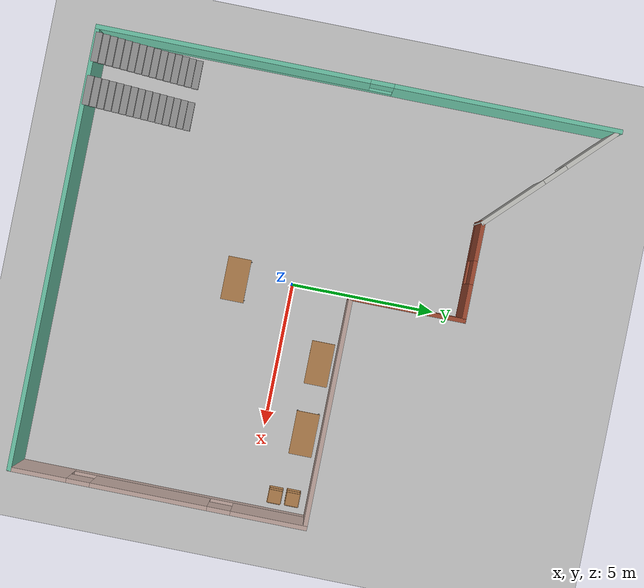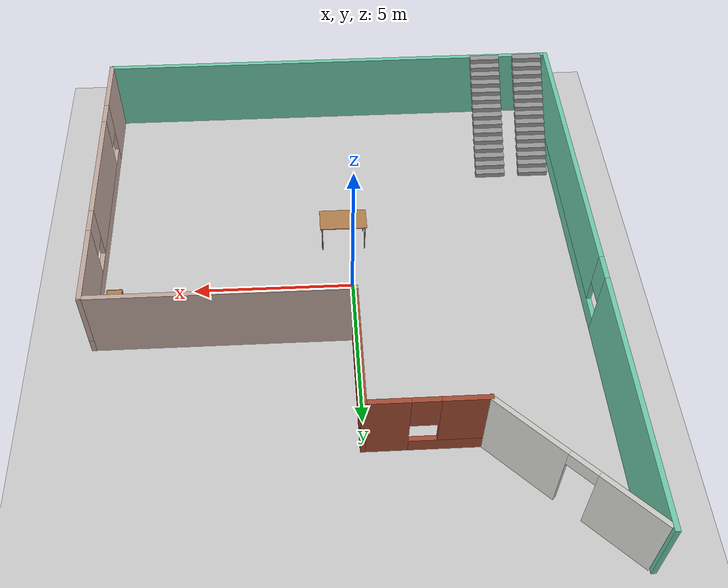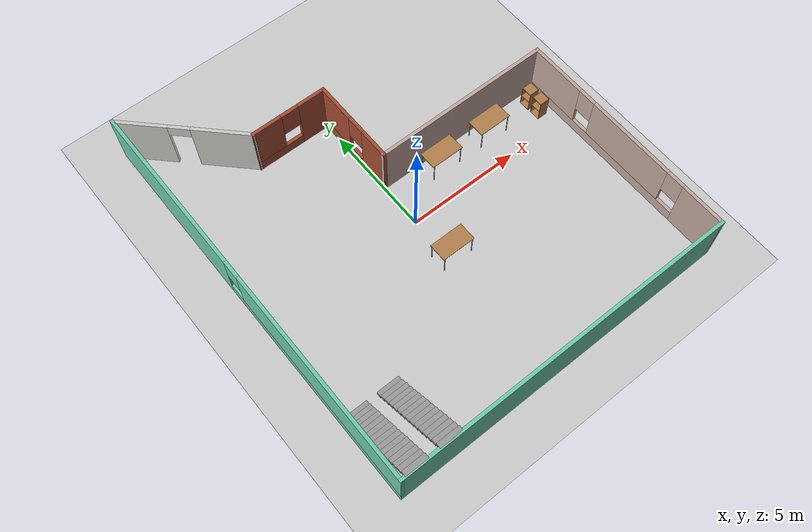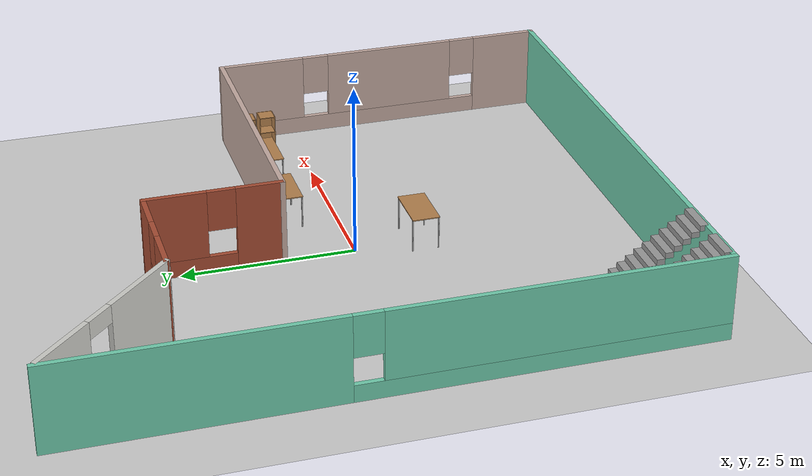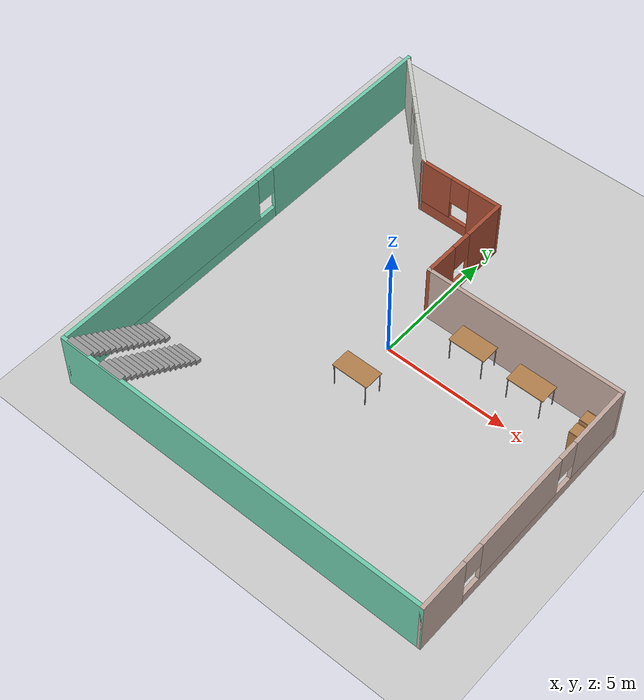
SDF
<sdf version="1.6">
 <world name="default">
  <light name="sun" type="directional">
   <pose>0 0 10 0 -0 0</pose>
   <diffuse>0.8 0.8 0.8 1</diffuse>
   <specular>0.2 0.2 0.2 1</specular>
   <attenuation>
    <range>1000</range>
    <constant>0.9</constant>
    <linear>0.01</linear>
    <quadratic>0.001</quadratic>
   </attenuation>
   <direction>-0.5 0.1 -0.9</direction>
  </light>
  <model name="ground_plane">
   <static>1</static>
   <link name="link">
    <collision name="collision">
     <geometry><plane><normal>0 0 1</normal><size>100 100</size></plane></geometry>
     <surface>
      <contact><collide_bitmask>65535</collide_bitmask></contact>
      <friction><ode><mu>100</mu><mu2>50</mu2></ode></friction>
     </surface>
    </collision>
    <visual name="visual">
     <cast_shadows>0</cast_shadows>
     <geometry><plane><normal>0 0 1</normal><size>100 100</size></plane></geometry>
     <material>
      <script><uri>file://media/materials/scripts/gazebo.material</uri><name>Gazebo/Grey</name></script>
     </material>
    </visual>
   </link>
  </model>
  <gravity>0 0 -9.8</gravity>
  <magnetic_field>6e-06 2.3e-05 -4.2e-05</magnetic_field>
  <atmosphere type="adiabatic"/>
  <physics name="default_physics" default="0" type="ode">
   <max_step_size>0.001</max_step_size>
   <real_time_factor>1</real_time_factor>
   <real_time_update_rate>1000</real_time_update_rate>
  </physics>
  <scene><ambient>0.4 0.4 0.4 1</ambient><background>0.7 0.7 0.7 1</background><shadows>1</shadows></scene>
  <spherical_coordinates>
   <surface_model>EARTH_WGS84</surface_model>
   <latitude_deg>0</latitude_deg>
   <longitude_deg>0</longitude_deg>
   <elevation>0</elevation>
   <heading_deg>0</heading_deg>
  </spherical_coordinates>
  <model name="SLAM_building_2">
   <pose>0.355071 0.863304 0 0 -0 0</pose>
   <link name="Stairs_0">
    <visual name="Stairs_0_Visual_0">
     <pose>-6.87319 -5.56197 0.083333 0 -0 0</pose>
     <geometry><box><size>1 0.233333 0.166667</size></box></geometry>
     <material>
      <script><uri>file://media/materials/scripts/gazebo.material</uri><name>Gazebo/Grey</name></script>
      <ambient>1 1 1 1</ambient>
     </material>
     <meta><layer>0</layer></meta>
    </visual>
    <collision name="Stairs_0_Collision_0">
     <geometry><box><size>1 0.233333 0.166667</size></box></geometry>
     <pose>-6.87319 -5.56197 0.083333 0 -0 0</pose>
    </collision>
    <visual name="Stairs_0_Visual_1">
     <pose>-6.87319 -5.7953 0.25 0 -0 0</pose>
     <geometry><box><size>1 0.233333 0.166667</size></box></geometry>
     <material>
      <script><uri>file://media/materials/scripts/gazebo.material</uri><name>Gazebo/Grey</name></script>
      <ambient>1 1 1 1</ambient>
     </material>
     <meta><layer>0</layer></meta>
    </visual>
    <collision name="Stairs_0_Collision_1">
     <geometry><box><size>1 0.233333 0.166667</size></box></geometry>
     <pose>-6.87319 -5.7953 0.25 0 -0 0</pose>
    </collision>
    <visual name="Stairs_0_Visual_2">
     <pose>-6.87319 -6.02864 0.416667 0 -0 0</pose>
     <geometry><box><size>1 0.233333 0.166667</size></box></geometry>
     <material>
      <script><uri>file://media/materials/scripts/gazebo.material</uri><name>Gazebo/Grey</name></script>
      <ambient>1 1 1 1</ambient>
     </material>
     <meta><layer>0</layer></meta>
    </visual>
    <collision name="Stairs_0_Collision_2">
     <geometry><box><size>1 0.233333 0.166667</size></box></geometry>
     <pose>-6.87319 -6.02864 0.416667 0 -0 0</pose>
    </collision>
    <visual name="Stairs_0_Visual_3">
     <pose>-6.87319 -6.26197 0.583333 0 -0 0</pose>
     <geometry><box><size>1 0.233333 0.166667</size></box></geometry>
     <material>
      <script><uri>file://media/materials/scripts/gazebo.material</uri><name>Gazebo/Grey</name></script>
      <ambient>1 1 1 1</ambient>
     </material>
     <meta><layer>0</layer></meta>
    </visual>
    <collision name="Stairs_0_Collision_3">
     <geometry><box><size>1 0.233333 0.166667</size></box></geometry>
     <pose>-6.87319 -6.26197 0.583333 0 -0 0</pose>
    </collision>
    <visual name="Stairs_0_Visual_4">
     <pose>-6.87319 -6.4953 0.75 0 -0 0</pose>
     <geometry><box><size>1 0.233333 0.166667</size></box></geometry>
     <material>
      <script><uri>file://media/materials/scripts/gazebo.material</uri><name>Gazebo/Grey</name></script>
      <ambient>1 1 1 1</ambient>
     </material>
     <meta><layer>0</layer></meta>
    </visual>
    <collision name="Stairs_0_Collision_4">
     <geometry><box><size>1 0.233333 0.166667</size></box></geometry>
     <pose>-6.87319 -6.4953 0.75 0 -0 0</pose>
    </collision>
    <visual name="Stairs_0_Visual_5">
     <pose>-6.87319 -6.72864 0.916667 0 -0 0</pose>
     <geometry><box><size>1 0.233333 0.166667</size></box></geometry>
     <material>
      <script><uri>file://media/materials/scripts/gazebo.material</uri><name>Gazebo/Grey</name></script>
      <ambient>1 1 1 1</ambient>
     </material>
     <meta><layer>0</layer></meta>
    </visual>
    <collision name="Stairs_0_Collision_5">
     <geometry><box><size>1 0.233333 0.166667</size></box></geometry>
     <pose>-6.87319 -6.72864 0.916667 0 -0 0</pose>
    </collision>
    <visual name="Stairs_0_Visual_6">
     <pose>-6.87319 -6.96197 1.08333 0 -0 0</pose>
     <geometry><box><size>1 0.233333 0.166667</size></box></geometry>
     <material>
      <script><uri>file://media/materials/scripts/gazebo.material</uri><name>Gazebo/Grey</name></script>
      <ambient>1 1 1 1</ambient>
     </material>
     <meta><layer>0</layer></meta>
    </visual>
    <collision name="Stairs_0_Collision_6">
     <geometry><box><size>1 0.233333 0.166667</size></box></geometry>
     <pose>-6.87319 -6.96197 1.08333 0 -0 0</pose>
    </collision>
    <visual name="Stairs_0_Visual_7">
     <pose>-6.87319 -7.1953 1.25 0 -0 0</pose>
     <geometry><box><size>1 0.233333 0.166667</size></box></geometry>
     <material>
      <script><uri>file://media/materials/scripts/gazebo.material</uri><name>Gazebo/Grey</name></script>
      <ambient>1 1 1 1</ambient>
     </material>
     <meta><layer>0</layer></meta>
    </visual>
    <collision name="Stairs_0_Collision_7">
     <geometry><box><size>1 0.233333 0.166667</size></box></geometry>
     <pose>-6.87319 -7.1953 1.25 0 -0 0</pose>
    </collision>
    <visual name="Stairs_0_Visual_8">
     <pose>-6.87319 -7.42864 1.41667 0 -0 0</pose>
     <geometry><box><size>1 0.233333 0.166667</size></box></geometry>
     <material>
      <script><uri>file://media/materials/scripts/gazebo.material</uri><name>Gazebo/Grey</name></script>
      <ambient>1 1 1 1</ambient>
     </material>
     <meta><layer>0</layer></meta>
    </visual>
    <collision name="Stairs_0_Collision_8">
     <geometry><box><size>1 0.233333 0.166667</size></box></geometry>
     <pose>-6.87319 -7.42864 1.41667 0 -0 0</pose>
    </collision>
    <visual name="Stairs_0_Visual_9">
     <pose>-6.87319 -7.66197 1.58333 0 -0 0</pose>
     <geometry><box><size>1 0.233333 0.166667</size></box></geometry>
     <material>
      <script><uri>file://media/materials/scripts/gazebo.material</uri><name>Gazebo/Grey</name></script>
      <ambient>1 1 1 1</ambient>
     </material>
     <meta><layer>0</layer></meta>
    </visual>
    <collision name="Stairs_0_Collision_9">
     <geometry><box><size>1 0.233333 0.166667</size></box></geometry>
     <pose>-6.87319 -7.66197 1.58333 0 -0 0</pose>
    </collision>
    <visual name="Stairs_0_Visual_10">
     <pose>-6.87319 -7.8953 1.75 0 -0 0</pose>
     <geometry><box><size>1 0.233333 0.166667</size></box></geometry>
     <material>
      <script><uri>file://media/materials/scripts/gazebo.material</uri><name>Gazebo/Grey</name></script>
      <ambient>1 1 1 1</ambient>
     </material>
     <meta><layer>0</layer></meta>
    </visual>
    <collision name="Stairs_0_Collision_10">
     <geometry><box><size>1 0.233333 0.166667</size></box></geometry>
     <pose>-6.87319 -7.8953 1.75 0 -0 0</pose>
    </collision>
    <visual name="Stairs_0_Visual_11">
     <pose>-6.87319 -8.12864 1.91667 0 -0 0</pose>
     <geometry><box><size>1 0.233333 0.166667</size></box></geometry>
     <material>
      <script><uri>file://media/materials/scripts/gazebo.material</uri><name>Gazebo/Grey</name></script>
      <ambient>1 1 1 1</ambient>
     </material>
     <meta><layer>0</layer></meta>
    </visual>
    <collision name="Stairs_0_Collision_11">
     <geometry><box><size>1 0.233333 0.166667</size></box></geometry>
     <pose>-6.87319 -8.12864 1.91667 0 -0 0</pose>
    </collision>
    <visual name="Stairs_0_Visual_12">
     <pose>-6.87319 -8.36197 2.08333 0 -0 0</pose>
     <geometry><box><size>1 0.233333 0.166667</size></box></geometry>
     <material>
      <script><uri>file://media/materials/scripts/gazebo.material</uri><name>Gazebo/Grey</name></script>
      <ambient>1 1 1 1</ambient>
     </material>
     <meta><layer>0</layer></meta>
    </visual>
    <collision name="Stairs_0_Collision_12">
     <geometry><box><size>1 0.233333 0.166667</size></box></geometry>
     <pose>-6.87319 -8.36197 2.08333 0 -0 0</pose>
    </collision>
    <visual name="Stairs_0_Visual_13">
     <pose>-6.87319 -8.5953 2.25 0 -0 0</pose>
     <geometry><box><size>1 0.233333 0.166667</size></box></geometry>
     <material>
      <script><uri>file://media/materials/scripts/gazebo.material</uri><name>Gazebo/Grey</name></script>
      <ambient>1 1 1 1</ambient>
     </material>
     <meta><layer>0</layer></meta>
    </visual>
    <collision name="Stairs_0_Collision_13">
     <geometry><box><size>1 0.233333 0.166667</size></box></geometry>
     <pose>-6.87319 -8.5953 2.25 0 -0 0</pose>
    </collision>
    <visual name="Stairs_0_Visual_14">
     <pose>-6.87319 -8.82864 2.41667 0 -0 0</pose>
     <geometry><box><size>1 0.233333 0.166667</size></box></geometry>
     <material>
      <script><uri>file://media/materials/scripts/gazebo.material</uri><name>Gazebo/Grey</name></script>
      <ambient>1 1 1 1</ambient>
     </material>
     <meta><layer>0</layer></meta>
    </visual>
    <collision name="Stairs_0_Collision_14">
     <geometry><box><size>1 0.233333 0.166667</size></box></geometry>
     <pose>-6.87319 -8.82864 2.41667 0 -0 0</pose>
    </collision>
   </link>
   <link name="Stairs_1">
    <visual name="Stairs_1_Visual_0">
     <pose>-5.39652 -5.56197 0.083333 0 -0 0</pose>
     <geometry><box><size>1 0.233333 0.166667</size></box></geometry>
     <material>
      <script><uri>file://media/materials/scripts/gazebo.material</uri><name>Gazebo/Grey</name></script>
      <ambient>1 1 1 1</ambient>
     </material>
     <meta><layer>0</layer></meta>
    </visual>
    <collision name="Stairs_1_Collision_0">
     <geometry><box><size>1 0.233333 0.166667</size></box></geometry>
     <pose>-5.39652 -5.56197 0.083333 0 -0 0</pose>
    </collision>
    <visual name="Stairs_1_Visual_1">
     <pose>-5.39652 -5.7953 0.25 0 -0 0</pose>
     <geometry><box><size>1 0.233333 0.166667</size></box></geometry>
     <material>
      <script><uri>file://media/materials/scripts/gazebo.material</uri><name>Gazebo/Grey</name></script>
      <ambient>1 1 1 1</ambient>
     </material>
     <meta><layer>0</layer></meta>
    </visual>
    <collision name="Stairs_1_Collision_1">
     <geometry><box><size>1 0.233333 0.166667</size></box></geometry>
     <pose>-5.39652 -5.7953 0.25 0 -0 0</pose>
    </collision>
    <visual name="Stairs_1_Visual_2">
     <pose>-5.39652 -6.02864 0.416667 0 -0 0</pose>
     <geometry><box><size>1 0.233333 0.166667</size></box></geometry>
     <material>
      <script><uri>file://media/materials/scripts/gazebo.material</uri><name>Gazebo/Grey</name></script>
      <ambient>1 1 1 1</ambient>
     </material>
     <meta><layer>0</layer></meta>
    </visual>
    <collision name="Stairs_1_Collision_2">
     <geometry><box><size>1 0.233333 0.166667</size></box></geometry>
     <pose>-5.39652 -6.02864 0.416667 0 -0 0</pose>
    </collision>
    <visual name="Stairs_1_Visual_3">
     <pose>-5.39652 -6.26197 0.583333 0 -0 0</pose>
     <geometry><box><size>1 0.233333 0.166667</size></box></geometry>
     <material>
      <script><uri>file://media/materials/scripts/gazebo.material</uri><name>Gazebo/Grey</name></script>
      <ambient>1 1 1 1</ambient>
     </material>
     <meta><layer>0</layer></meta>
    </visual>
    <collision name="Stairs_1_Collision_3">
     <geometry><box><size>1 0.233333 0.166667</size></box></geometry>
     <pose>-5.39652 -6.26197 0.583333 0 -0 0</pose>
    </collision>
    <visual name="Stairs_1_Visual_4">
     <pose>-5.39652 -6.4953 0.75 0 -0 0</pose>
     <geometry><box><size>1 0.233333 0.166667</size></box></geometry>
     <material>
      <script><uri>file://media/materials/scripts/gazebo.material</uri><name>Gazebo/Grey</name></script>
      <ambient>1 1 1 1</ambient>
     </material>
     <meta><layer>0</layer></meta>
    </visual>
    <collision name="Stairs_1_Collision_4">
     <geometry><box><size>1 0.233333 0.166667</size></box></geometry>
     <pose>-5.39652 -6.4953 0.75 0 -0 0</pose>
    </collision>
    <visual name="Stairs_1_Visual_5">
     <pose>-5.39652 -6.72864 0.916667 0 -0 0</pose>
     <geometry><box><size>1 0.233333 0.166667</size></box></geometry>
     <material>
      <script><uri>file://media/materials/scripts/gazebo.material</uri><name>Gazebo/Grey</name></script>
      <ambient>1 1 1 1</ambient>
     </material>
     <meta><layer>0</layer></meta>
    </visual>
    <collision name="Stairs_1_Collision_5">
     <geometry><box><size>1 0.233333 0.166667</size></box></geometry>
     <pose>-5.39652 -6.72864 0.916667 0 -0 0</pose>
    </collision>
    <visual name="Stairs_1_Visual_6">
     <pose>-5.39652 -6.96197 1.08333 0 -0 0</pose>
     <geometry><box><size>1 0.233333 0.166667</size></box></geometry>
     <material>
      <script><uri>file://media/materials/scripts/gazebo.material</uri><name>Gazebo/Grey</name></script>
      <ambient>1 1 1 1</ambient>
     </material>
     <meta><layer>0</layer></meta>
    </visual>
    <collision name="Stairs_1_Collision_6">
     <geometry><box><size>1 0.233333 0.166667</size></box></geometry>
     <pose>-5.39652 -6.96197 1.08333 0 -0 0</pose>
    </collision>
    <visual name="Stairs_1_Visual_7">
     <pose>-5.39652 -7.1953 1.25 0 -0 0</pose>
     <geometry><box><size>1 0.233333 0.166667</size></box></geometry>
     <material>
      <script><uri>file://media/materials/scripts/gazebo.material</uri><name>Gazebo/Grey</name></script>
      <ambient>1 1 1 1</ambient>
     </material>
     <meta><layer>0</layer></meta>
    </visual>
    <collision name="Stairs_1_Collision_7">
     <geometry><box><size>1 0.233333 0.166667</size></box></geometry>
     <pose>-5.39652 -7.1953 1.25 0 -0 0</pose>
    </collision>
    <visual name="Stairs_1_Visual_8">
     <pose>-5.39652 -7.42864 1.41667 0 -0 0</pose>
     <geometry><box><size>1 0.233333 0.166667</size></box></geometry>
     <material>
      <script><uri>file://media/materials/scripts/gazebo.material</uri><name>Gazebo/Grey</name></script>
      <ambient>1 1 1 1</ambient>
     </material>
     <meta><layer>0</layer></meta>
    </visual>
    <collision name="Stairs_1_Collision_8">
     <geometry><box><size>1 0.233333 0.166667</size></box></geometry>
     <pose>-5.39652 -7.42864 1.41667 0 -0 0</pose>
    </collision>
    <visual name="Stairs_1_Visual_9">
     <pose>-5.39652 -7.66197 1.58333 0 -0 0</pose>
     <geometry><box><size>1 0.233333 0.166667</size></box></geometry>
     <material>
      <script><uri>file://media/materials/scripts/gazebo.material</uri><name>Gazebo/Grey</name></script>
      <ambient>1 1 1 1</ambient>
     </material>
     <meta><layer>0</layer></meta>
    </visual>
    <collision name="Stairs_1_Collision_9">
     <geometry><box><size>1 0.233333 0.166667</size></box></geometry>
     <pose>-5.39652 -7.66197 1.58333 0 -0 0</pose>
    </collision>
    <visual name="Stairs_1_Visual_10">
     <pose>-5.39652 -7.8953 1.75 0 -0 0</pose>
     <geometry><box><size>1 0.233333 0.166667</size></box></geometry>
     <material>
      <script><uri>file://media/materials/scripts/gazebo.material</uri><name>Gazebo/Grey</name></script>
      <ambient>1 1 1 1</ambient>
     </material>
     <meta><layer>0</layer></meta>
    </visual>
    <collision name="Stairs_1_Collision_10">
     <geometry><box><size>1 0.233333 0.166667</size></box></geometry>
     <pose>-5.39652 -7.8953 1.75 0 -0 0</pose>
    </collision>
    <visual name="Stairs_1_Visual_11">
     <pose>-5.39652 -8.12864 1.91667 0 -0 0</pose>
     <geometry><box><size>1 0.233333 0.166667</size></box></geometry>
     <material>
      <script><uri>file://media/materials/scripts/gazebo.material</uri><name>Gazebo/Grey</name></script>
      <ambient>1 1 1 1</ambient>
     </material>
     <meta><layer>0</layer></meta>
    </visual>
    <collision name="Stairs_1_Collision_11">
     <geometry><box><size>1 0.233333 0.166667</size></box></geometry>
     <pose>-5.39652 -8.12864 1.91667 0 -0 0</pose>
    </collision>
    <visual name="Stairs_1_Visual_12">
     <pose>-5.39652 -8.36197 2.08333 0 -0 0</pose>
     <geometry><box><size>1 0.233333 0.166667</size></box></geometry>
     <material>
      <script><uri>file://media/materials/scripts/gazebo.material</uri><name>Gazebo/Grey</name></script>
      <ambient>1 1 1 1</ambient>
     </material>
     <meta><layer>0</layer></meta>
    </visual>
    <collision name="Stairs_1_Collision_12">
     <geometry><box><size>1 0.233333 0.166667</size></box></geometry>
     <pose>-5.39652 -8.36197 2.08333 0 -0 0</pose>
    </collision>
    <visual name="Stairs_1_Visual_13">
     <pose>-5.39652 -8.5953 2.25 0 -0 0</pose>
     <geometry><box><size>1 0.233333 0.166667</size></box></geometry>
     <material>
      <script><uri>file://media/materials/scripts/gazebo.material</uri><name>Gazebo/Grey</name></script>
      <ambient>1 1 1 1</ambient>
     </material>
     <meta><layer>0</layer></meta>
    </visual>
    <collision name="Stairs_1_Collision_13">
     <geometry><box><size>1 0.233333 0.166667</size></box></geometry>
     <pose>-5.39652 -8.5953 2.25 0 -0 0</pose>
    </collision>
    <visual name="Stairs_1_Visual_14">
     <pose>-5.39652 -8.82864 2.41667 0 -0 0</pose>
     <geometry><box><size>1 0.233333 0.166667</size></box></geometry>
     <material>
      <script><uri>file://media/materials/scripts/gazebo.material</uri><name>Gazebo/Grey</name></script>
      <ambient>1 1 1 1</ambient>
     </material>
     <meta><layer>0</layer></meta>
    </visual>
    <collision name="Stairs_1_Collision_14">
     <geometry><box><size>1 0.233333 0.166667</size></box></geometry>
     <pose>-5.39652 -8.82864 2.41667 0 -0 0</pose>
    </collision>
   </link>
   <link name="Wall_15">
    <pose>-7.55 0 0 0 0 -1.5708</pose>
    <visual name="Wall_15_Visual_0">
     <pose>-5.10166 0 1.25 0 -0 0</pose>
     <geometry><box><size>7.79668 0.15 2.5</size></box></geometry>
     <material>
      <script><uri>file://media/materials/scripts/gazebo.material</uri><name>Gazebo/Grey</name></script>
      <ambient>0.435294 0.796078 0.67451 1</ambient>
     </material>
     <meta><layer>0</layer></meta>
    </visual>
    <collision name="Wall_15_Collision_0">
     <geometry><box><size>7.79668 0.15 2.5</size></box></geometry>
     <pose>-5.10166 0 1.25 0 -0 0</pose>
    </collision>
    <visual name="Wall_15_Visual_1">
     <pose>3.89834 0 0.25 0 -0 0</pose>
     <geometry><box><size>10.2033 0.15 0.5</size></box></geometry>
     <material>
      <script><uri>file://media/materials/scripts/gazebo.material</uri><name>Gazebo/Grey</name></script>
      <ambient>0.435294 0.796078 0.67451 1</ambient>
     </material>
     <meta><layer>0</layer></meta>
    </visual>
    <collision name="Wall_15_Collision_1">
     <geometry><box><size>10.2033 0.15 0.5</size></box></geometry>
     <pose>3.89834 0 0.25 0 -0 0</pose>
    </collision>
    <visual name="Wall_15_Visual_2">
     <pose>4.29834 0 1.5 0 -0 0</pose>
     <geometry><box><size>9.40332 0.15 2</size></box></geometry>
     <material>
      <script><uri>file://media/materials/scripts/gazebo.material</uri><name>Gazebo/Grey</name></script>
      <ambient>0.435294 0.796078 0.67451 1</ambient>
     </material>
     <meta><layer>0</layer></meta>
    </visual>
    <collision name="Wall_15_Collision_2">
     <geometry><box><size>9.40332 0.15 2</size></box></geometry>
     <pose>4.29834 0 1.5 0 -0 0</pose>
    </collision>
    <visual name="Wall_15_Visual_3">
     <pose>-0.80332 0 1.9 0 -0 0</pose>
     <geometry><box><size>0.8 0.15 1.2</size></box></geometry>
     <material>
      <script><uri>file://media/materials/scripts/gazebo.material</uri><name>Gazebo/Grey</name></script>
      <ambient>0.435294 0.796078 0.67451 1</ambient>
     </material>
     <meta><layer>0</layer></meta>
    </visual>
    <collision name="Wall_15_Collision_3">
     <geometry><box><size>0.8 0.15 1.2</size></box></geometry>
     <pose>-0.80332 0 1.9 0 -0 0</pose>
    </collision>
   </link>
   <link name="Wall_16">
    <collision name="Wall_16_Collision">
     <geometry><box><size>15.25 0.15 2.5</size></box></geometry>
     <pose>0 0 1.25 0 -0 0</pose>
    </collision>
    <visual name="Wall_16_Visual">
     <pose>0 0 1.25 0 -0 0</pose>
     <geometry><box><size>15.25 0.15 2.5</size></box></geometry>
     <material>
      <script><uri>file://media/materials/scripts/gazebo.material</uri><name>Gazebo/Grey</name></script>
      <ambient>0.435294 0.796078 0.67451 1</ambient>
     </material>
     <meta><layer>0</layer></meta>
    </visual>
    <pose>0 -8.925 0 0 -0 0</pose>
   </link>
   <link name="Wall_17">
    <pose>7.55 -3.875 0 0 -0 1.5708</pose>
    <visual name="Wall_17_Visual_0">
     <pose>-4.11501 0 1.25 0 -0 0</pose>
     <geometry><box><size>2.01998 0.15 2.5</size></box></geometry>
     <material>
      <script><uri>file://media/materials/scripts/gazebo.material</uri><name>Gazebo/Grey</name></script>
      <ambient>0.760784 0.662745 0.627451 1</ambient>
     </material>
     <meta><layer>0</layer></meta>
    </visual>
    <collision name="Wall_17_Collision_0">
     <geometry><box><size>2.01998 0.15 2.5</size></box></geometry>
     <pose>-4.11501 0 1.25 0 -0 0</pose>
    </collision>
    <visual name="Wall_17_Visual_1">
     <pose>1.00999 0 0.25 0 -0 0</pose>
     <geometry><box><size>8.23002 0.15 0.5</size></box></geometry>
     <material>
      <script><uri>file://media/materials/scripts/gazebo.material</uri><name>Gazebo/Grey</name></script>
      <ambient>0.760784 0.662745 0.627451 1</ambient>
     </material>
     <meta><layer>0</layer></meta>
    </visual>
    <collision name="Wall_17_Collision_1">
     <geometry><box><size>8.23002 0.15 0.5</size></box></geometry>
     <pose>1.00999 0 0.25 0 -0 0</pose>
    </collision>
    <visual name="Wall_17_Visual_2">
     <pose>-0.305438 0 1.5 0 -0 0</pose>
     <geometry><box><size>3.99917 0.15 2</size></box></geometry>
     <material>
      <script><uri>file://media/materials/scripts/gazebo.material</uri><name>Gazebo/Grey</name></script>
      <ambient>0.760784 0.662745 0.627451 1</ambient>
     </material>
     <meta><layer>0</layer></meta>
    </visual>
    <collision name="Wall_17_Collision_2">
     <geometry><box><size>3.99917 0.15 2</size></box></geometry>
     <pose>-0.305438 0 1.5 0 -0 0</pose>
    </collision>
    <visual name="Wall_17_Visual_3">
     <pose>3.80958 0 1.5 0 -0 0</pose>
     <geometry><box><size>2.63085 0.15 2</size></box></geometry>
     <material>
      <script><uri>file://media/materials/scripts/gazebo.material</uri><name>Gazebo/Grey</name></script>
      <ambient>0.760784 0.662745 0.627451 1</ambient>
     </material>
     <meta><layer>0</layer></meta>
    </visual>
    <collision name="Wall_17_Collision_3">
     <geometry><box><size>2.63085 0.15 2</size></box></geometry>
     <pose>3.80958 0 1.5 0 -0 0</pose>
    </collision>
    <visual name="Wall_17_Visual_4">
     <pose>-2.70503 0 1.9 0 -0 0</pose>
     <geometry><box><size>0.8 0.15 1.2</size></box></geometry>
     <material>
      <script><uri>file://media/materials/scripts/gazebo.material</uri><name>Gazebo/Grey</name></script>
      <ambient>0.760784 0.662745 0.627451 1</ambient>
     </material>
     <meta><layer>0</layer></meta>
    </visual>
    <collision name="Wall_17_Collision_4">
     <geometry><box><size>0.8 0.15 1.2</size></box></geometry>
     <pose>-2.70503 0 1.9 0 -0 0</pose>
    </collision>
    <visual name="Wall_17_Visual_5">
     <pose>2.09415 0 1.9 0 -0 0</pose>
     <geometry><box><size>0.8 0.15 1.2</size></box></geometry>
     <material>
      <script><uri>file://media/materials/scripts/gazebo.material</uri><name>Gazebo/Grey</name></script>
      <ambient>0.760784 0.662745 0.627451 1</ambient>
     </material>
     <meta><layer>0</layer></meta>
    </visual>
    <collision name="Wall_17_Collision_5">
     <geometry><box><size>0.8 0.15 1.2</size></box></geometry>
     <pose>2.09415 0 1.9 0 -0 0</pose>
    </collision>
   </link>
   <link name="Wall_18">
    <collision name="Wall_18_Collision">
     <geometry><box><size>8 0.15 2.5</size></box></geometry>
     <pose>0 0 1.25 0 -0 0</pose>
    </collision>
    <visual name="Wall_18_Visual">
     <pose>0 0 1.25 0 -0 0</pose>
     <geometry><box><size>8 0.15 2.5</size></box></geometry>
     <material>
      <script><uri>file://media/materials/scripts/gazebo.material</uri><name>Gazebo/Grey</name></script>
      <ambient>0.760784 0.662745 0.627451 1</ambient>
     </material>
     <meta><layer>0</layer></meta>
    </visual>
    <pose>3.625 1.175 0 0 -0 3.14159</pose>
   </link>
   <link name="Wall_19">
    <pose>-0.3 3.1 0 0 -0 1.5708</pose>
    <visual name="Wall_19_Visual_0">
     <pose>-1.30237 0 1.25 0 -0 0</pose>
     <geometry><box><size>1.39527 0.15 2.5</size></box></geometry>
     <material>
      <script><uri>file://media/materials/scripts/gazebo.material</uri><name>Gazebo/Bricks</name></script>
      <ambient>1 1 1 1</ambient>
     </material>
     <meta><layer>0</layer></meta>
    </visual>
    <collision name="Wall_19_Collision_0">
     <geometry><box><size>1.39527 0.15 2.5</size></box></geometry>
     <pose>-1.30237 0 1.25 0 -0 0</pose>
    </collision>
    <visual name="Wall_19_Visual_1">
     <pose>0.697634 0 0.25 0 -0 0</pose>
     <geometry><box><size>2.60473 0.15 0.5</size></box></geometry>
     <material>
      <script><uri>file://media/materials/scripts/gazebo.material</uri><name>Gazebo/Bricks</name></script>
      <ambient>1 1 1 1</ambient>
     </material>
     <meta><layer>0</layer></meta>
    </visual>
    <collision name="Wall_19_Collision_1">
     <geometry><box><size>2.60473 0.15 0.5</size></box></geometry>
     <pose>0.697634 0 0.25 0 -0 0</pose>
    </collision>
    <visual name="Wall_19_Visual_2">
     <pose>1.09763 0 1.5 0 -0 0</pose>
     <geometry><box><size>1.80473 0.15 2</size></box></geometry>
     <material>
      <script><uri>file://media/materials/scripts/gazebo.material</uri><name>Gazebo/Bricks</name></script>
      <ambient>1 1 1 1</ambient>
     </material>
     <meta><layer>0</layer></meta>
    </visual>
    <collision name="Wall_19_Collision_2">
     <geometry><box><size>1.80473 0.15 2</size></box></geometry>
     <pose>1.09763 0 1.5 0 -0 0</pose>
    </collision>
    <visual name="Wall_19_Visual_3">
     <pose>-0.204732 0 1.9 0 -0 0</pose>
     <geometry><box><size>0.8 0.15 1.2</size></box></geometry>
     <material>
      <script><uri>file://media/materials/scripts/gazebo.material</uri><name>Gazebo/Bricks</name></script>
      <ambient>1 1 1 1</ambient>
     </material>
     <meta><layer>0</layer></meta>
    </visual>
    <collision name="Wall_19_Collision_3">
     <geometry><box><size>0.8 0.15 1.2</size></box></geometry>
     <pose>-0.204732 0 1.9 0 -0 0</pose>
    </collision>
   </link>
   <link name="Wall_20">
    <pose>-1.975 5.025 0 0 -0 3.14159</pose>
    <visual name="Wall_20_Visual_0">
     <pose>-1.08702 0 1.25 0 -0 0</pose>
     <geometry><box><size>1.32596 0.15 2.5</size></box></geometry>
     <material>
      <script><uri>file://media/materials/scripts/gazebo.material</uri><name>Gazebo/Bricks</name></script>
      <ambient>1 1 1 1</ambient>
     </material>
     <meta><layer>0</layer></meta>
    </visual>
    <collision name="Wall_20_Collision_0">
     <geometry><box><size>1.32596 0.15 2.5</size></box></geometry>
     <pose>-1.08702 0 1.25 0 -0 0</pose>
    </collision>
    <visual name="Wall_20_Visual_1">
     <pose>0.662982 0 0.25 0 -0 0</pose>
     <geometry><box><size>2.17404 0.15 0.5</size></box></geometry>
     <material>
      <script><uri>file://media/materials/scripts/gazebo.material</uri><name>Gazebo/Bricks</name></script>
      <ambient>1 1 1 1</ambient>
     </material>
     <meta><layer>0</layer></meta>
    </visual>
    <collision name="Wall_20_Collision_1">
     <geometry><box><size>2.17404 0.15 0.5</size></box></geometry>
     <pose>0.662982 0 0.25 0 -0 0</pose>
    </collision>
    <visual name="Wall_20_Visual_2">
     <pose>1.06298 0 1.5 0 -0 0</pose>
     <geometry><box><size>1.37404 0.15 2</size></box></geometry>
     <material>
      <script><uri>file://media/materials/scripts/gazebo.material</uri><name>Gazebo/Bricks</name></script>
      <ambient>1 1 1 1</ambient>
     </material>
     <meta><layer>0</layer></meta>
    </visual>
    <collision name="Wall_20_Collision_2">
     <geometry><box><size>1.37404 0.15 2</size></box></geometry>
     <pose>1.06298 0 1.5 0 -0 0</pose>
    </collision>
    <visual name="Wall_20_Visual_3">
     <pose>-0.024037 0 1.9 0 -0 0</pose>
     <geometry><box><size>0.8 0.15 1.2</size></box></geometry>
     <material>
      <script><uri>file://media/materials/scripts/gazebo.material</uri><name>Gazebo/Bricks</name></script>
      <ambient>1 1 1 1</ambient>
     </material>
     <meta><layer>0</layer></meta>
    </visual>
    <collision name="Wall_20_Collision_3">
     <geometry><box><size>0.8 0.15 1.2</size></box></geometry>
     <pose>-0.024037 0 1.9 0 -0 0</pose>
    </collision>
   </link>
   <link name="Wall_21">
    <pose>-5.54151 6.91651 0 0 -0 2.35619</pose>
    <visual name="Wall_21_Visual_0">
     <pose>-1.48499 0 1.25 0 -0 0</pose>
     <geometry><box><size>2.53003 0.15 2.5</size></box></geometry>
     <material>
      <script><uri>file://media/materials/scripts/gazebo.material</uri><name>Gazebo/CeilingTiled</name></script>
      <ambient>1 1 1 1</ambient>
     </material>
     <meta><layer>0</layer></meta>
    </visual>
    <collision name="Wall_21_Collision_0">
     <geometry><box><size>2.53003 0.15 2.5</size></box></geometry>
     <pose>-1.48499 0 1.25 0 -0 0</pose>
    </collision>
    <visual name="Wall_21_Visual_1">
     <pose>1.71501 0 1.25 0 -0 0</pose>
     <geometry><box><size>2.06997 0.15 2.5</size></box></geometry>
     <material>
      <script><uri>file://media/materials/scripts/gazebo.material</uri><name>Gazebo/CeilingTiled</name></script>
      <ambient>1 1 1 1</ambient>
     </material>
     <meta><layer>0</layer></meta>
    </visual>
    <collision name="Wall_21_Collision_1">
     <geometry><box><size>2.06997 0.15 2.5</size></box></geometry>
     <pose>1.71501 0 1.25 0 -0 0</pose>
    </collision>
    <visual name="Wall_21_Visual_2">
     <pose>0.230026 0 2.25 0 -0 0</pose>
     <geometry><box><size>0.9 0.15 0.5</size></box></geometry>
     <material>
      <script><uri>file://media/materials/scripts/gazebo.material</uri><name>Gazebo/CeilingTiled</name></script>
      <ambient>1 1 1 1</ambient>
     </material>
     <meta><layer>0</layer></meta>
    </visual>
    <collision name="Wall_21_Collision_2">
     <geometry><box><size>0.9 0.15 0.5</size></box></geometry>
     <pose>0.230026 0 2.25 0 -0 0</pose>
    </collision>
   </link>
   <static>1</static>
  </model>
  <model name="cabinet">
   <static>1</static>
   <link name="cabinet_bottom_plate">
    <inertial>
     <pose>0 0 -1 0 -0 0</pose>
     <inertia><ixx>2.05</ixx><ixy>0</ixy><ixz>0</ixz><iyy>2.05</iyy><iyz>0</iyz><izz>2.05</izz></inertia>
     <mass>25</mass>
    </inertial>
    <collision name="cabinet_bottom_plate_geom">
     <pose>0 0 0.01 0 -0 0</pose>
     <geometry><box><size>0.45 0.45 0.02</size></box></geometry>
    </collision>
    <visual name="cabinet_bottom_plate_geom_visual">
     <pose>0 0 0.01 0 -0 0</pose>
     <geometry><box><size>0.45 0.45 0.02</size></box></geometry>
     <material>
      <script><uri>file://media/materials/scripts/gazebo.material</uri><name>Gazebo/Wood</name></script>
     </material>
    </visual>
    <collision name="cabinet_bottom_plate_geom_cabinet_back_plate">
     <pose>0.235 0 0.51 0 -0 0</pose>
     <geometry><box><size>0.02 0.45 1.02</size></box></geometry>
    </collision>
    <visual name="cabinet_bottom_plate_geom_cabinet_back_plate_visual">
     <pose>0.235 0 0.51 0 -0 0</pose>
     <geometry><box><size>0.02 0.45 1.02</size></box></geometry>
     <material>
      <script><uri>file://media/materials/scripts/gazebo.material</uri><name>Gazebo/Wood</name></script>
     </material>
    </visual>
    <collision name="cabinet_bottom_plate_geom_cabinet_left_plate">
     <pose>0 0.235 0.51 0 -0 0</pose>
     <geometry><box><size>0.45 0.02 1.02</size></box></geometry>
    </collision>
    <visual name="cabinet_bottom_plate_geom_cabinet_left_plate_visual">
     <pose>0 0.235 0.51 0 -0 0</pose>
     <geometry><box><size>0.45 0.02 1.02</size></box></geometry>
     <material>
      <script><uri>file://media/materials/scripts/gazebo.material</uri><name>Gazebo/Wood</name></script>
     </material>
    </visual>
    <collision name="cabinet_bottom_plate_geom_cabinet_middle_plate">
     <pose>0 0 0.51 0 -0 0</pose>
     <geometry><box><size>0.45 0.45 0.02</size></box></geometry>
    </collision>
    <visual name="cabinet_bottom_plate_geom_cabinet_middle_plate_visual">
     <pose>0 0 0.51 0 -0 0</pose>
     <geometry><box><size>0.45 0.45 0.02</size></box></geometry>
     <material>
      <script><uri>file://media/materials/scripts/gazebo.material</uri><name>Gazebo/Wood</name></script>
     </material>
    </visual>
    <collision name="cabinet_bottom_plate_geom_cabinet_right_plate">
     <pose>0 -0.235 0.51 0 -0 0</pose>
     <geometry><box><size>0.45 0.02 1.02</size></box></geometry>
    </collision>
    <visual name="cabinet_bottom_plate_geom_cabinet_right_plate_visual">
     <pose>0 -0.235 0.51 0 -0 0</pose>
     <geometry><box><size>0.45 0.02 1.02</size></box></geometry>
     <material>
      <script><uri>file://media/materials/scripts/gazebo.material</uri><name>Gazebo/Wood</name></script>
     </material>
    </visual>
    <collision name="cabinet_bottom_plate_geom_cabinet_top_plate">
     <pose>0 0 1.01 0 -0 0</pose>
     <geometry><box><size>0.45 0.45 0.02</size></box></geometry>
    </collision>
    <visual name="cabinet_bottom_plate_geom_cabinet_top_plate_visual">
     <pose>0 0 1.01 0 -0 0</pose>
     <geometry><box><size>0.45 0.45 0.02</size></box></geometry>
     <material>
      <script><uri>file://media/materials/scripts/gazebo.material</uri><name>Gazebo/Wood</name></script>
     </material>
    </visual>
   </link>
   <pose>7.24519 1.45986 0 0 -0 0</pose>
  </model>
  <model name="cabinet_0">
   <static>1</static>
   <link name="cabinet_bottom_plate">
    <inertial>
     <pose>0 0 -1 0 -0 0</pose>
     <inertia><ixx>2.05</ixx><ixy>0</ixy><ixz>0</ixz><iyy>2.05</iyy><iyz>0</iyz><izz>2.05</izz></inertia>
     <mass>25</mass>
    </inertial>
    <collision name="cabinet_bottom_plate_geom">
     <pose>0 0 0.01 0 -0 0</pose>
     <geometry><box><size>0.45 0.45 0.02</size></box></geometry>
    </collision>
    <visual name="cabinet_bottom_plate_geom_visual">
     <pose>0 0 0.01 0 -0 0</pose>
     <geometry><box><size>0.45 0.45 0.02</size></box></geometry>
     <material>
      <script><uri>file://media/materials/scripts/gazebo.material</uri><name>Gazebo/Wood</name></script>
     </material>
    </visual>
    <collision name="cabinet_bottom_plate_geom_cabinet_back_plate">
     <pose>0.235 0 0.51 0 -0 0</pose>
     <geometry><box><size>0.02 0.45 1.02</size></box></geometry>
    </collision>
    <visual name="cabinet_bottom_plate_geom_cabinet_back_plate_visual">
     <pose>0.235 0 0.51 0 -0 0</pose>
     <geometry><box><size>0.02 0.45 1.02</size></box></geometry>
     <material>
      <script><uri>file://media/materials/scripts/gazebo.material</uri><name>Gazebo/Wood</name></script>
     </material>
    </visual>
    <collision name="cabinet_bottom_plate_geom_cabinet_left_plate">
     <pose>0 0.235 0.51 0 -0 0</pose>
     <geometry><box><size>0.45 0.02 1.02</size></box></geometry>
    </collision>
    <visual name="cabinet_bottom_plate_geom_cabinet_left_plate_visual">
     <pose>0 0.235 0.51 0 -0 0</pose>
     <geometry><box><size>0.45 0.02 1.02</size></box></geometry>
     <material>
      <script><uri>file://media/materials/scripts/gazebo.material</uri><name>Gazebo/Wood</name></script>
     </material>
    </visual>
    <collision name="cabinet_bottom_plate_geom_cabinet_middle_plate">
     <pose>0 0 0.51 0 -0 0</pose>
     <geometry><box><size>0.45 0.45 0.02</size></box></geometry>
    </collision>
    <visual name="cabinet_bottom_plate_geom_cabinet_middle_plate_visual">
     <pose>0 0 0.51 0 -0 0</pose>
     <geometry><box><size>0.45 0.45 0.02</size></box></geometry>
     <material>
      <script><uri>file://media/materials/scripts/gazebo.material</uri><name>Gazebo/Wood</name></script>
     </material>
    </visual>
    <collision name="cabinet_bottom_plate_geom_cabinet_right_plate">
     <pose>0 -0.235 0.51 0 -0 0</pose>
     <geometry><box><size>0.45 0.02 1.02</size></box></geometry>
    </collision>
    <visual name="cabinet_bottom_plate_geom_cabinet_right_plate_visual">
     <pose>0 -0.235 0.51 0 -0 0</pose>
     <geometry><box><size>0.45 0.02 1.02</size></box></geometry>
     <material>
      <script><uri>file://media/materials/scripts/gazebo.material</uri><name>Gazebo/Wood</name></script>
     </material>
    </visual>
    <collision name="cabinet_bottom_plate_geom_cabinet_top_plate">
     <pose>0 0 1.01 0 -0 0</pose>
     <geometry><box><size>0.45 0.45 0.02</size></box></geometry>
    </collision>
    <visual name="cabinet_bottom_plate_geom_cabinet_top_plate_visual">
     <pose>0 0 1.01 0 -0 0</pose>
     <geometry><box><size>0.45 0.45 0.02</size></box></geometry>
     <material>
      <script><uri>file://media/materials/scripts/gazebo.material</uri><name>Gazebo/Wood</name></script>
     </material>
    </visual>
   </link>
   <pose>7.26692 0.849565 0 0 -0 0</pose>
  </model>
  <model name="table">
   <static>1</static>
   <link name="link">
    <collision name="surface">
     <pose>0 0 1 0 -0 0</pose>
     <geometry><box><size>1.5 0.8 0.03</size></box></geometry>
     <surface><friction><ode><mu>0.6</mu><mu2>0.6</mu2></ode></friction></surface>
    </collision>
    <visual name="visual1">
     <pose>0 0 1 0 -0 0</pose>
     <geometry><box><size>1.5 0.8 0.03</size></box></geometry>
     <material>
      <script><uri>file://media/materials/scripts/gazebo.material</uri><name>Gazebo/Wood</name></script>
     </material>
    </visual>
    <collision name="front_left_leg">
     <pose>0.68 0.38 0.5 0 -0 0</pose>
     <geometry><cylinder><radius>0.02</radius><length>1</length></cylinder></geometry>
    </collision>
    <visual name="front_left_leg">
     <pose>0.68 0.38 0.5 0 -0 0</pose>
     <geometry><cylinder><radius>0.02</radius><length>1</length></cylinder></geometry>
     <material>
      <script><uri>file://media/materials/scripts/gazebo.material</uri><name>Gazebo/Grey</name></script>
     </material>
    </visual>
    <collision name="front_right_leg">
     <pose>0.68 -0.38 0.5 0 -0 0</pose>
     <geometry><cylinder><radius>0.02</radius><length>1</length></cylinder></geometry>
    </collision>
    <visual name="front_right_leg">
     <pose>0.68 -0.38 0.5 0 -0 0</pose>
     <geometry><cylinder><radius>0.02</radius><length>1</length></cylinder></geometry>
     <material>
      <script><uri>file://media/materials/scripts/gazebo.material</uri><name>Gazebo/Grey</name></script>
     </material>
    </visual>
    <collision name="back_right_leg">
     <pose>-0.68 -0.38 0.5 0 -0 0</pose>
     <geometry><cylinder><radius>0.02</radius><length>1</length></cylinder></geometry>
    </collision>
    <visual name="back_right_leg">
     <pose>-0.68 -0.38 0.5 0 -0 0</pose>
     <geometry><cylinder><radius>0.02</radius><length>1</length></cylinder></geometry>
     <material>
      <script><uri>file://media/materials/scripts/gazebo.material</uri><name>Gazebo/Grey</name></script>
     </material>
    </visual>
    <collision name="back_left_leg">
     <pose>-0.68 0.38 0.5 0 -0 0</pose>
     <geometry><cylinder><radius>0.02</radius><length>1</length></cylinder></geometry>
    </collision>
    <visual name="back_left_leg">
     <pose>-0.68 0.38 0.5 0 -0 0</pose>
     <geometry><cylinder><radius>0.02</radius><length>1</length></cylinder></geometry>
     <material>
      <script><uri>file://media/materials/scripts/gazebo.material</uri><name>Gazebo/Grey</name></script>
     </material>
    </visual>
   </link>
   <pose>0.208117 -1.92834 0 0 -0 0</pose>
  </model>
  <model name="table_0">
   <static>1</static>
   <link name="link">
    <collision name="surface">
     <pose>0 0 1 0 -0 0</pose>
     <geometry><box><size>1.5 0.8 0.03</size></box></geometry>
     <surface><friction><ode><mu>0.6</mu><mu2>0.6</mu2></ode></friction></surface>
    </collision>
    <visual name="visual1">
     <pose>0 0 1 0 -0 0</pose>
     <geometry><box><size>1.5 0.8 0.03</size></box></geometry>
     <material>
      <script><uri>file://media/materials/scripts/gazebo.material</uri><name>Gazebo/Wood</name></script>
     </material>
    </visual>
    <collision name="front_left_leg">
     <pose>0.68 0.38 0.5 0 -0 0</pose>
     <geometry><cylinder><radius>0.02</radius><length>1</length></cylinder></geometry>
    </collision>
    <visual name="front_left_leg">
     <pose>0.68 0.38 0.5 0 -0 0</pose>
     <geometry><cylinder><radius>0.02</radius><length>1</length></cylinder></geometry>
     <material>
      <script><uri>file://media/materials/scripts/gazebo.material</uri><name>Gazebo/Grey</name></script>
     </material>
    </visual>
    <collision name="front_right_leg">
     <pose>0.68 -0.38 0.5 0 -0 0</pose>
     <geometry><cylinder><radius>0.02</radius><length>1</length></cylinder></geometry>
    </collision>
    <visual name="front_right_leg">
     <pose>0.68 -0.38 0.5 0 -0 0</pose>
     <geometry><cylinder><radius>0.02</radius><length>1</length></cylinder></geometry>
     <material>
      <script><uri>file://media/materials/scripts/gazebo.material</uri><name>Gazebo/Grey</name></script>
     </material>
    </visual>
    <collision name="back_right_leg">
     <pose>-0.68 -0.38 0.5 0 -0 0</pose>
     <geometry><cylinder><radius>0.02</radius><length>1</length></cylinder></geometry>
    </collision>
    <visual name="back_right_leg">
     <pose>-0.68 -0.38 0.5 0 -0 0</pose>
     <geometry><cylinder><radius>0.02</radius><length>1</length></cylinder></geometry>
     <material>
      <script><uri>file://media/materials/scripts/gazebo.material</uri><name>Gazebo/Grey</name></script>
     </material>
    </visual>
    <collision name="back_left_leg">
     <pose>-0.68 0.38 0.5 0 -0 0</pose>
     <geometry><cylinder><radius>0.02</radius><length>1</length></cylinder></geometry>
    </collision>
    <visual name="back_left_leg">
     <pose>-0.68 0.38 0.5 0 -0 0</pose>
     <geometry><cylinder><radius>0.02</radius><length>1</length></cylinder></geometry>
     <material>
      <script><uri>file://media/materials/scripts/gazebo.material</uri><name>Gazebo/Grey</name></script>
     </material>
    </visual>
   </link>
   <pose>2.48979 1.45666 0 0 -0 0</pose>
  </model>
  <model name="table_1">
   <static>1</static>
   <link name="link">
    <collision name="surface">
     <pose>0 0 1 0 -0 0</pose>
     <geometry><box><size>1.5 0.8 0.03</size></box></geometry>
     <surface><friction><ode><mu>0.6</mu><mu2>0.6</mu2></ode></friction></surface>
    </collision>
    <visual name="visual1">
     <pose>0 0 1 0 -0 0</pose>
     <geometry><box><size>1.5 0.8 0.03</size></box></geometry>
     <material>
      <script><uri>file://media/materials/scripts/gazebo.material</uri><name>Gazebo/Wood</name></script>
     </material>
    </visual>
    <collision name="front_left_leg">
     <pose>0.68 0.38 0.5 0 -0 0</pose>
     <geometry><cylinder><radius>0.02</radius><length>1</length></cylinder></geometry>
    </collision>
    <visual name="front_left_leg">
     <pose>0.68 0.38 0.5 0 -0 0</pose>
     <geometry><cylinder><radius>0.02</radius><length>1</length></cylinder></geometry>
     <material>
      <script><uri>file://media/materials/scripts/gazebo.material</uri><name>Gazebo/Grey</name></script>
     </material>
    </visual>
    <collision name="front_right_leg">
     <pose>0.68 -0.38 0.5 0 -0 0</pose>
     <geometry><cylinder><radius>0.02</radius><length>1</length></cylinder></geometry>
    </collision>
    <visual name="front_right_leg">
     <pose>0.68 -0.38 0.5 0 -0 0</pose>
     <geometry><cylinder><radius>0.02</radius><length>1</length></cylinder></geometry>
     <material>
      <script><uri>file://media/materials/scripts/gazebo.material</uri><name>Gazebo/Grey</name></script>
     </material>
    </visual>
    <collision name="back_right_leg">
     <pose>-0.68 -0.38 0.5 0 -0 0</pose>
     <geometry><cylinder><radius>0.02</radius><length>1</length></cylinder></geometry>
    </collision>
    <visual name="back_right_leg">
     <pose>-0.68 -0.38 0.5 0 -0 0</pose>
     <geometry><cylinder><radius>0.02</radius><length>1</length></cylinder></geometry>
     <material>
      <script><uri>file://media/materials/scripts/gazebo.material</uri><name>Gazebo/Grey</name></script>
     </material>
    </visual>
    <collision name="back_left_leg">
     <pose>-0.68 0.38 0.5 0 -0 0</pose>
     <geometry><cylinder><radius>0.02</radius><length>1</length></cylinder></geometry>
    </collision>
    <visual name="back_left_leg">
     <pose>-0.68 0.38 0.5 0 -0 0</pose>
     <geometry><cylinder><radius>0.02</radius><length>1</length></cylinder></geometry>
     <material>
      <script><uri>file://media/materials/scripts/gazebo.material</uri><name>Gazebo/Grey</name></script>
     </material>
    </visual>
   </link>
   <pose>4.95694 1.41623 0 0 -0 0</pose>
  </model>
 </world>
</sdf>
